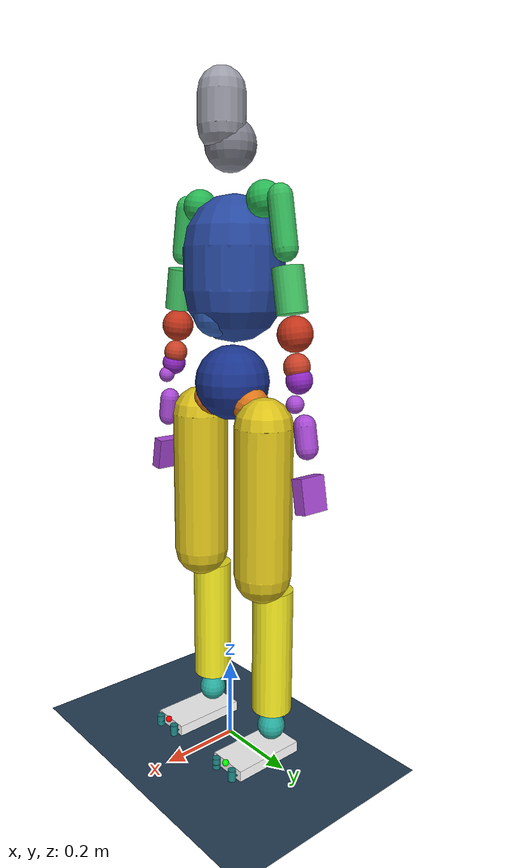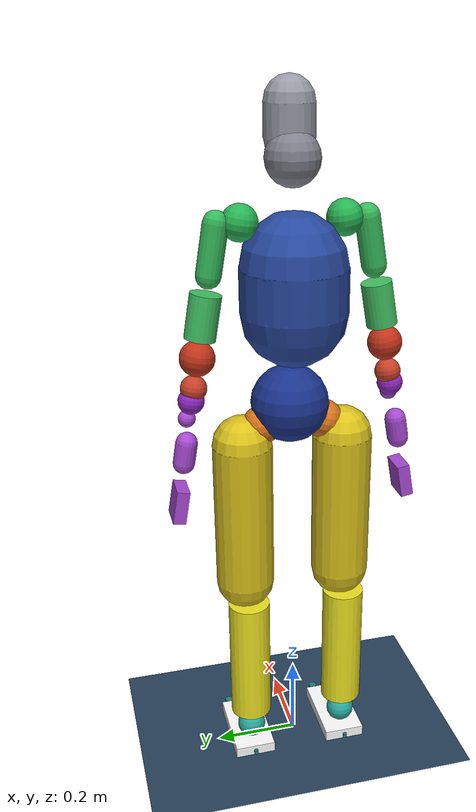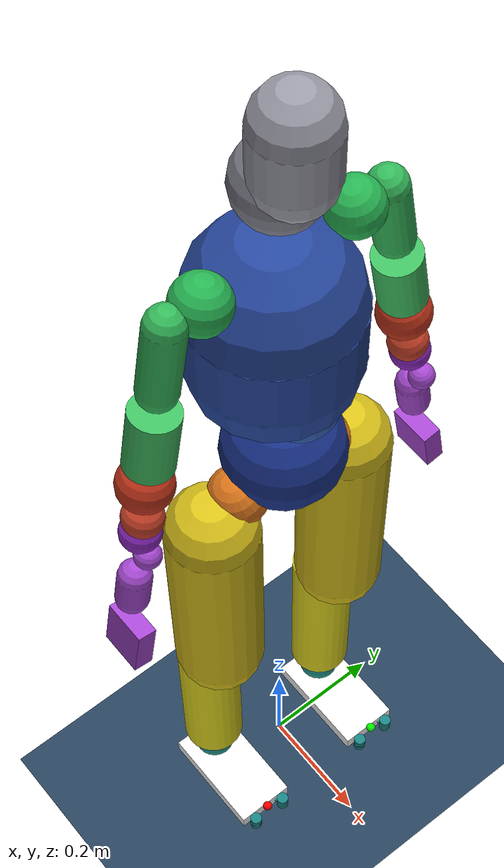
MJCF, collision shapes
<?xml version="1.0" encoding="UTF-8"?>
<mujoco model="walker_astron_v1">
  <compiler angle="radian" meshdir="/home/soom/work/GMR/xgmr_tienkung/assets/walker_c1/meshes" boundmass="0.0001"/>
  <option integrator="implicitfast" cone="elliptic" impratio="100" timestep="0.001" iterations="100" solver="CG" gravity="0 0 -9.81">
    <flag contact="enable" energy="enable" />
  </option>
  <statistic meansize="0.140456" extent="1.93199" center="-0.0165219 -8.18765e-05 -0.0755538"/>
  <default>
    <joint damping="1.0" frictionloss="0.2" armature="0.01"/>
  </default>
  <asset>
    <mesh name="base_link" file="base_link.STL"/>
    <mesh name="L_hip_pitch_link" file="L_hip_pitch_link.STL"/>
    <mesh name="L_hip_roll_link" file="L_hip_roll_link.STL"/>
    <mesh name="L_hip_yaw_link" file="L_hip_yaw_link.STL"/>
    <mesh name="L_knee_pitch_link" file="L_knee_pitch_link.STL"/>
    <mesh name="L_ankle_pitch_link" file="L_ankle_pitch_link.STL"/>
    <mesh name="L_ankle_roll_link" file="L_ankle_roll_link.STL"/>
    <mesh name="R_hip_pitch_link" file="R_hip_pitch_link.STL"/>
    <mesh name="R_hip_roll_link" file="R_hip_roll_link.STL"/>
    <mesh name="R_hip_yaw_link" file="R_hip_yaw_link.STL"/>
    <mesh name="R_knee_pitch_link" file="R_knee_pitch_link.STL"/>
    <mesh name="R_ankle_pitch_link" file="R_ankle_pitch_link.STL"/>
    <mesh name="R_ankle_roll_link" file="R_ankle_roll_link.STL"/>
    <mesh name="waist_yaw_link" file="waist_yaw_link.STL"/>
    <mesh name="waist_pitch_link" file="waist_pitch_link.STL"/>
    <mesh name="waist_roll_link" file="waist_roll_link.STL"/>
    <mesh name="L_shoulder_pitch_link" file="L_shoulder_pitch_link.STL"/>
    <mesh name="L_shoulder_roll_link" file="L_shoulder_roll_link.STL"/>
    <mesh name="L_shoulder_yaw_link" file="L_shoulder_yaw_link.STL"/>
    <mesh name="L_elbow_pitch_link" file="L_elbow_pitch_link.STL"/>
    <mesh name="L_elbow_yaw_link" file="L_elbow_yaw_link.STL"/>
    <mesh name="L_wrist_pitch_link" file="L_wrist_pitch_link.STL"/>
    <mesh name="L_wrist_roll_link" file="L_wrist_roll_link.STL"/>
    <mesh name="R_shoulder_pitch_link" file="R_shoulder_pitch_link.STL"/>
    <mesh name="R_shoulder_roll_link" file="R_shoulder_roll_link.STL"/>
    <mesh name="R_shoulder_yaw_link" file="R_shoulder_yaw_link.STL"/>
    <mesh name="R_elbow_pitch_link" file="R_elbow_pitch_link.STL"/>
    <mesh name="R_elbow_yaw_link" file="R_elbow_yaw_link.STL"/>
    <mesh name="R_wrist_pitch_link" file="R_wrist_pitch_link.STL"/>
    <mesh name="R_wrist_roll_link" file="R_wrist_roll_link.STL"/>
    <mesh name="head_yaw_link" file="head_yaw_link.STL"/>
    <mesh name="head_pitch_link" file="head_pitch_link.STL"/>

    <mesh name="L_hand_base_link" file="hand3_v1_new/L_hand_base_link.STL"/>
    <mesh name="L_palm_link" file="hand3_v1_new/L_palm_link.STL"/>
    <mesh name="L_thumb_cmp_link" file="hand3_v1_new/L_thumb_cmp_link.STL"/>
    <mesh name="L_thumb_mpp_link" file="hand3_v1_new/L_thumb_mpp_link.STL"/>
    <mesh name="L_thumb_ip_link" file="hand3_v1_new/L_thumb_ip_link.STL"/>
    <mesh name="L_index_mpp_link" file="hand3_v1_new/L_index_mpp_link.STL"/>
    <mesh name="L_index_ip_link" file="hand3_v1_new/L_index_ip_link.STL"/>
    <mesh name="L_middle_mpp_link" file="hand3_v1_new/L_middle_mpp_link.STL"/>
    <mesh name="L_middle_ip_link" file="hand3_v1_new/L_middle_ip_link.STL"/>
    <mesh name="L_ring_mpp_link" file="hand3_v1_new/L_ring_mpp_link.STL"/>
    <mesh name="L_ring_ip_link" file="hand3_v1_new/L_ring_ip_link.STL"/>
    <mesh name="L_little_mpp_link" file="hand3_v1_new/L_little_mpp_link.STL"/>
    <mesh name="L_little_ip_link" file="hand3_v1_new/L_little_ip_link.STL"/>
    <mesh name="R_hand_base_link" file="hand3_v1_new/R_hand_base_link.STL"/>
    <mesh name="R_palm_link" file="hand3_v1_new/R_palm_link.STL"/>
    <mesh name="R_thumb_cmp_link" file="hand3_v1_new/R_thumb_cmp_link.STL"/>
    <mesh name="R_thumb_mpp_link" file="hand3_v1_new/R_thumb_mpp_link.STL"/>
    <mesh name="R_thumb_ip_link" file="hand3_v1_new/R_thumb_ip_link.STL"/>
    <mesh name="R_index_mpp_link" file="hand3_v1_new/R_index_mpp_link.STL"/>
    <mesh name="R_index_ip_link" file="hand3_v1_new/R_index_ip_link.STL"/>
    <mesh name="R_middle_mpp_link" file="hand3_v1_new/R_middle_mpp_link.STL"/>
    <mesh name="R_middle_ip_link" file="hand3_v1_new/R_middle_ip_link.STL"/>
    <mesh name="R_ring_mpp_link" file="hand3_v1_new/R_ring_mpp_link.STL"/>
    <mesh name="R_ring_ip_link" file="hand3_v1_new/R_ring_ip_link.STL"/>
    <mesh name="R_little_mpp_link" file="hand3_v1_new/R_little_mpp_link.STL"/>
    <mesh name="R_little_ip_link" file="hand3_v1_new/R_little_ip_link.STL"/>
    <texture type="skybox" builtin="flat" rgb1="0 0 0" rgb2="0 0 0" width="512" height="3072"/>
    <texture type="2d" name="groundplane" builtin="checker" mark="edge" rgb1="0.2 0.3 0.4" rgb2="0.1 0.2 0.3" markrgb="0.8 0.8 0.8" width="300" height="300"/>
    <material name="groundplane" texture="groundplane" texuniform="true" texrepeat="5 5" reflectance="0.2"/>
  </asset>
  <worldbody>
    <light pos="1 0 3.5" dir="0 0 -1" directional="true"/>
    <geom name="floor" size="0 0 0.05" type="plane" material="groundplane"/>
    <body name="base_link" pos="0 0 0.91">
      <inertial pos="-0.00060742 0 -0.00390464" quat="1 0 0 0" mass="5.32923152" diaginertia="0.02561815 0.01751097 0.02397466"/>
      <joint name="floating_base" type="free"/>
      <geom type="mesh" contype="0" conaffinity="0" group="1" density="0" rgba="0.22 0.40 0.65 1" mesh="base_link"/>
      <geom name="base_link_collision" type="sphere" size="0.06" pos="0 0 -0.004" rgba="0.22 0.40 0.65 0.3"/>
      <body name="body_imu_link" quat="0.707107 0 0 -0.707107">
        <inertial pos="0 0 0" mass="0.0001" diaginertia="1e-09 1e-09 1e-09"/>
        <geom size="0.005 0.005 0.005" type="box" contype="0" conaffinity="0" group="1" density="0" rgba="0 0 1 1"/>
        <site name="imu" size="0.01" pos="0 0 0"/>
      </body>
      <body name="L_hip_pitch_link" pos="0 0.073499 -0.019694" quat="0.991445 -0.130526 0 0">
        <inertial pos="0.0048541 0.0500696 -0.0150271" quat="0.245039 0.652073 0.417654 0.583372" mass="1.65569" diaginertia="0.00293392 0.00256263 0.00240876"/>
        <joint name="L_hip_pitch_joint" pos="0 0 0" axis="0 1 0" limited="true" range="-2.98 2.53"/>
        <geom type="mesh" contype="0" conaffinity="0" group="1" density="0" rgba="0.85 0.45 0.10 1" mesh="L_hip_pitch_link"/>
        <geom name="L_hip_pitch_collision" type="sphere" size="0.045" rgba="0.85 0.45 0.10 0.3"/>
        <body name="L_hip_roll_link" pos="0 0.0535795 -0.02" quat="0.991445 0.130526 0 0">
          <inertial pos="0.00120874 0.00203626 -0.0330367" quat="0.513666 0.487315 0.496385 0.502267" mass="0.514808" diaginertia="0.00158831 0.0015264 0.000682669"/>
          <joint name="L_hip_roll_joint" pos="0 0 0" axis="1 0 0" limited="true" range="-0.314 2.059"/>
          <geom type="mesh" contype="0" conaffinity="0" group="1" density="0" rgba="0.90 0.62 0.15 1" mesh="L_hip_roll_link"/>
          <geom name="L_hip_roll_collision" type="sphere" size="0.065" pos="0 0 -0.033" rgba="0.90 0.62 0.15 0.3"/>
          <body name="L_hip_yaw_link" pos="0 0 -0.0621" quat="1 0 0 0">
            <inertial pos="-0.00120768 -0.00740878 -0.123895" quat="0.723017 0.011601 0.0200665 0.690441" mass="5.13193" diaginertia="0.0446202 0.0424782 0.0109089"/>
            <joint name="L_hip_yaw_joint" pos="0 0 0" axis="0 0 1" limited="true" range="-2.146 3.246"/>
            <geom type="mesh" contype="0" conaffinity="0" group="1" density="0" rgba="0.85 0.75 0.10 1" mesh="L_hip_yaw_link"/>
            <geom name="L_hip_yaw_collision" type="capsule" size="0.07 0.18" pos="0 0 -0.13" rgba="0.85 0.75 0.10 0.3"/>
            <body name="L_knee_pitch_link" pos="-0.035 0 -0.3179" quat="1 0 0 0">
              <inertial pos="0.00270804 3.653e-05 -0.160407" quat="0.705286 0.0123666 0.015597 0.708643" mass="3.32222" diaginertia="0.0369622 0.0367307 0.00346204"/>
              <joint name="L_knee_pitch_joint" pos="0 0 0" axis="0 1 0" limited="true" range="0.08 2.478"/>
              <geom type="mesh" contype="0" conaffinity="0" group="1" density="0" rgba="0.92 0.88 0.12 1" mesh="L_knee_pitch_link"/>
              <geom name="L_knee_pitch_collision" type="cylinder" size="0.05 0.16" pos="0 0 -0.2" rgba="0.92 0.88 0.12 0.3"/>
              <body name="L_ankle_pitch_link" pos="0 0 -0.41" quat="1 0 0 0">
                <inertial pos="-0.00012374 -0.00221434 -0.0057231" quat="0.0409104 0.70465 0.0378602 0.707362" mass="0.110584" diaginertia="4.6937e-05 3.42735e-05 2.57096e-05"/>
                <joint name="L_ankle_pitch_joint" pos="0 0 0" axis="0 1 0" limited="true" range="-1.012 0.488"/>
                <geom type="mesh" contype="0" conaffinity="0" group="1" density="0" rgba="0.15 0.65 0.60 1" mesh="L_ankle_pitch_link"/>
                <geom name="L_ankle_pitch_collision" type="sphere" size="0.035" rgba="0.15 0.65 0.60 0.3"/>
                <body name="L_ankle_roll_link" pos="0 0 -0.012" quat="1 0 0 0">
                  <inertial pos="0.0340612 2.01988e-06 -0.0209947" quat="-4.35034e-05 0.733434 -6.9335e-06 0.679761" mass="0.826921" diaginertia="0.00492003 0.00442443 0.00096887"/>
                  <joint name="L_ankle_roll_joint" pos="0 0 0" axis="1 0 0" limited="true" range="-0.401 0.401"/>
                  <geom type="mesh" contype="0" conaffinity="0" group="1" density="0" rgba="0.10 0.50 0.50 1" mesh="L_ankle_roll_link"/>
                  <geom name="L_ankle_roll_collision" type="box" size="0.095 0.05 0.015" pos="0.05 0 -0.045" rgba="1 1 1 0.3"/>
                  <geom name="L_foot_end_outer"      pos="-0.049  0.0  -0.045" size="0.005 0.005" type="cylinder" rgba="0.10 0.50 0.50 1" contype="0" conaffinity="0"/>
                  <geom name="L_foot_front_outer"    size="0.01 0.001" pos="0.155 -0.03 -0.045" type="cylinder" rgba="0.10 0.50 0.50 1" contype="0" conaffinity="0"/>
                  <geom name="L_foot_front_inner"    size="0.01 0.001" pos="0.145  0.03 -0.045" type="cylinder" rgba="0.10 0.50 0.50 1" contype="0" conaffinity="0"/>
                  <geom name="L_foot_mid_outer"      size="0.01 0.001" pos="0.045 -0.02 -0.045" type="cylinder" rgba="0.10 0.50 0.50 1" contype="0" conaffinity="0"/>
                  <geom name="L_foot_mid_inner"      size="0.01 0.001" pos="0.045  0.02 -0.045" type="cylinder" rgba="0.10 0.50 0.50 1" contype="0" conaffinity="0"/>
                  <geom name="L_foot_strip_outer"    size="0.01 0.001" pos="0.095 -0.01 -0.045" type="cylinder" rgba="0.10 0.50 0.50 1" contype="0" conaffinity="0"/>
                  <geom name="toe1_left_collision"   size="0.01 0.015" pos="0.155  0.03 -0.045" type="cylinder" rgba="0.10 0.50 0.50 1"/>
                  <geom name="toe2_left_collision"   size="0.01 0.015" pos="0.155 -0.03 -0.045" type="cylinder" rgba="0.10 0.50 0.50 1"/>
                  <geom name="foot_left_sole" type="sphere" size="0.005" pos="0 0 -0.05" rgba="0 0 0 0"/>
                  <site name="left_foot_end" pos="0.15 0 -0.03" size="0.008" rgba="0 1 0 1"/>
                  <site name="left_foot_force" pos="0 0 -0.05"/>
                  <site name="left_foot_torque" pos="0 0 -0.05"/>
                </body>
              </body>
            </body>
          </body>
        </body>
      </body>
      <body name="R_hip_pitch_link" pos="0 -0.0734226 -0.0196735" quat="0.991445 0.130526 0 0">
        <inertial pos="0.0062436 -0.0504262 -0.014716" quat="0.519984 0.459924 0.700462 0.165648" mass="1.65592" diaginertia="0.00288142 0.00250814 0.00239465"/>
        <joint name="R_hip_pitch_joint" pos="0 0 0" axis="0 1 0" limited="true" range="-2.98 2.53"/>
        <geom type="mesh" contype="0" conaffinity="0" group="1" density="0" rgba="0.85 0.45 0.10 1" mesh="R_hip_pitch_link"/>
        <geom name="R_hip_pitch_collision" type="sphere" size="0.045" rgba="0.85 0.45 0.10 0.3"/>
        <body name="R_hip_roll_link" pos="0 -0.053579 -0.02" quat="0.991445 -0.130526 0 0">
          <inertial pos="0.00120761 -0.00204745 -0.033039" quat="0.502185 0.496301 0.487383 0.513764" mass="0.514808" diaginertia="0.00158819 0.00152639 0.000682655"/>
          <joint name="R_hip_roll_joint" pos="0 0 0" axis="1 0 0" limited="true" range="-2.059 0.314"/>
          <geom type="mesh" contype="0" conaffinity="0" group="1" density="0" rgba="0.90 0.62 0.15 1" mesh="R_hip_roll_link"/>
          <geom name="R_hip_roll_collision" type="sphere" size="0.065" pos="0 0 -0.033" rgba="0.90 0.62 0.15 0.3"/>
          <body name="R_hip_yaw_link" pos="0 0 -0.0621" quat="1 0 0 0">
            <inertial pos="-0.00120109 0.00740989 -0.123888" quat="0.688781 0.0189619 0.0104703 0.724645" mass="5.13155" diaginertia="0.0446208 0.04247 0.0109153"/>
            <joint name="R_hip_yaw_joint" pos="0 0 0" axis="0 0 1" limited="true" range="-3.246 2.146"/>
            <geom type="mesh" contype="0" conaffinity="0" group="1" density="0" rgba="0.85 0.75 0.10 1" mesh="R_hip_yaw_link"/>
            <geom name="R_hip_yaw_collision" type="capsule" size="0.07 0.18" pos="0 0 -0.13" rgba="0.85 0.75 0.10 0.3"/>
            <body name="R_knee_pitch_link" pos="-0.035 0 -0.3179" quat="1 0 0 0">
              <inertial pos="0.00271353 -0.00017413 -0.160478" quat="0.734924 0.0149851 0.0127119 0.677864" mass="3.32312" diaginertia="0.0369759 0.0367282 0.00345006"/>
              <joint name="R_knee_pitch_joint" pos="0 0 0" axis="0 1 0" limited="true" range="0.08 2.478"/>
              <geom type="mesh" contype="0" conaffinity="0" group="1" density="0" rgba="0.92 0.88 0.12 1" mesh="R_knee_pitch_link"/>
              <geom name="R_knee_pitch_collision" type="cylinder" size="0.05 0.16" pos="0 0 -0.2" rgba="0.92 0.88 0.12 0.3"/>
              <body name="R_ankle_pitch_link" pos="0 0 -0.41" quat="1 0 0 0">
                <inertial pos="0.00012374 0.00221434 -0.0057231" quat="-0.0378602 0.707362 -0.0409104 0.70465" mass="0.110584" diaginertia="4.6937e-05 3.42735e-05 2.57096e-05"/>
                <joint name="R_ankle_pitch_joint" pos="0 0 0" axis="0 1 0" limited="true" range="-1.012 0.488"/>
                <geom type="mesh" contype="0" conaffinity="0" group="1" density="0" rgba="0.15 0.65 0.60 1" mesh="R_ankle_pitch_link"/>
                <geom name="R_ankle_pitch_collision" type="sphere" size="0.035" rgba="0.15 0.65 0.60 0.3"/>
                <body name="R_ankle_roll_link" pos="0 0 -0.012" quat="1 0 0 0">
                  <inertial pos="0.0340612 2.01988e-06 -0.0209947" quat="-4.35034e-05 0.733434 -6.9335e-06 0.679761" mass="0.826921" diaginertia="0.00492003 0.00442443 0.00096887"/>
                  <joint name="R_ankle_roll_joint" pos="0 0 0" axis="1 0 0" limited="true" range="-0.401 0.401"/>
                  <geom type="mesh" contype="0" conaffinity="0" group="1" density="0" rgba="0.10 0.50 0.50 1" mesh="R_ankle_roll_link"/>
                  <geom name="R_ankle_roll_collision" type="box" size="0.095 0.05 0.015" pos="0.05 0 -0.045" rgba="1 1 1 0.3"/>
                  <geom name="R_foot_end_outer"      pos="-0.049  0.0  -0.045" size="0.005 0.005" type="cylinder" rgba="0.10 0.50 0.50 1" contype="0" conaffinity="0"/>
                  <geom name="R_foot_front_outer"    size="0.01 0.001" pos="0.155 -0.03 -0.045" type="cylinder" rgba="0.10 0.50 0.50 1" contype="0" conaffinity="0"/>
                  <geom name="R_foot_front_inner"    size="0.01 0.001" pos="0.145  0.03 -0.045" type="cylinder" rgba="0.10 0.50 0.50 1" contype="0" conaffinity="0"/>
                  <geom name="R_foot_mid_outer"      size="0.01 0.001" pos="0.045 -0.02 -0.045" type="cylinder" rgba="0.10 0.50 0.50 1" contype="0" conaffinity="0"/>
                  <geom name="R_foot_mid_inner"      size="0.01 0.001" pos="0.045  0.02 -0.045" type="cylinder" rgba="0.10 0.50 0.50 1" contype="0" conaffinity="0"/>
                  <geom name="R_foot_strip_outer"    size="0.01 0.001" pos="0.095 -0.01 -0.045" type="cylinder" rgba="0.10 0.50 0.50 1" contype="0" conaffinity="0"/>
                  <geom name="toe1_right_collision"  size="0.01 0.015" pos="0.155  0.03 -0.045" type="cylinder" rgba="0.10 0.50 0.50 1"/>
                  <geom name="toe2_right_collision"  size="0.01 0.015" pos="0.155 -0.03 -0.045" type="cylinder" rgba="0.10 0.50 0.50 1"/>
                  <geom name="foot_right_sole" type="sphere" size="0.005" pos="0 0 -0.05" rgba="0 0 0 0"/>
                  <site name="right_foot_end" pos="0.15 0 -0.03" size="0.008" rgba="1 0 0 1"/>
                  <site name="right_foot_force" pos="0 0 -0.05"/>
                  <site name="right_foot_torque" pos="0 0 -0.05"/>
                </body>
              </body>
            </body>
          </body>
        </body>
      </body>
      <body name="waist_yaw_link" pos="0 0 0.0766406" quat="1 0 0 0">
        <inertial pos="0.00270178 -0.00088235 0.0369526" quat="0.400373 0.42401 -0.529445 0.616121" mass="2.0613" diaginertia="0.0057903 0.00442111 0.00398297"/>
        <joint name="waist_yaw_joint" pos="0 0 0" axis="0 0 1" limited="true" range="-2.792 2.792"/>
        <geom type="mesh" contype="0" conaffinity="0" group="1" density="0" rgba="0.10 0.20 0.55 1" mesh="waist_yaw_link"/>
        <geom name="waist_yaw_collision" type="sphere" size="0.09" pos="0 0.007 -0.049" rgba="0.10 0.20 0.55 0.3"/>
        <body name="waist_pitch_link" pos="0.04 0 0.1155" quat="1 0 0 0">
          <inertial pos="-0.00141152 -0.00378014 -1.015e-05" quat="0.489842 0.49442 -0.504432 0.51103" mass="1.56616" diaginertia="0.00200827 0.00193456 0.0014908"/>
          <joint name="waist_pitch_joint" pos="0 0 0" axis="0 1 0" limited="true" range="-0.017 1.221"/>
          <geom type="mesh" contype="0" conaffinity="0" group="1" density="0" rgba="0.20 0.38 0.72 1" mesh="waist_pitch_link"/>
          <geom name="waist_pitch_collision" type="sphere" size="0.055" pos="0.002 0 -0.001" rgba="0.20 0.38 0.72 0.3"/>
          <body name="waist_roll_link" pos="-0.0515 0 0" quat="1 0 0 0">
            <inertial pos="-0.00232419 0.000109073 0.150683" quat="0.997895 0.00083228 0.0647555 -0.00354434" mass="13.3404" diaginertia="0.14941 0.126998 0.0780225"/>
            <joint name="waist_roll_joint" pos="0 0 0" axis="1 0 0" limited="true" range="-0.75 0.75"/>
            <geom type="mesh" contype="0" conaffinity="0" group="1" density="0" rgba="0.15 0.28 0.62 1" mesh="waist_roll_link"/>
            <geom name="waist_roll_collision" type="capsule" size="0.12 0.05" pos="0 0 0.1" rgba="0.15 0.28 0.62 0.3"/>
            <body name="L_shoulder_pitch_link" pos="0.0115 0.114262 0.247779" quat="0.996195 0.0871557 0 0">
              <inertial pos="0.00379496 0.0469029 -4.625e-05" quat="0.530969 0.396641 -0.559055 0.498202" mass="0.798422" diaginertia="0.000564005 0.000537541 0.000482404"/>
              <joint name="L_shoulder_pitch_joint" pos="0 0 0" axis="0 1 0" limited="true" range="-3.089 2.565"/>
              <geom type="mesh" contype="0" conaffinity="0" group="1" density="0" rgba="0.15 0.70 0.32 1" mesh="L_shoulder_pitch_link"/>
              <geom name="L_shoulder_pitch_collision" type="sphere" size="0.04" rgba="0.15 0.70 0.32 0.3"/>
              <body name="L_shoulder_roll_link" pos="0 0.0499 0" quat="1 0 0 0">
                <inertial pos="0.00388223 0.00090177 -0.0814423" quat="0.872628 0.0372716 0.135609 0.467698" mass="0.954452" diaginertia="0.00175475 0.00170192 0.000762658"/>
                <joint name="L_shoulder_roll_joint" pos="0 0 0" axis="1 0 0" limited="true" range="-0.139 1.884"/>
                <geom type="mesh" contype="0" conaffinity="0" group="1" density="0" rgba="0.20 0.72 0.35 1" mesh="L_shoulder_roll_link"/>
                <geom name="L_shoulder_roll_collision" type="capsule" size="0.028 0.055" pos="0 0 -0.063" quat="1 0 0 0" rgba="0.20 0.72 0.35 0.3"/>
                <body name="L_shoulder_yaw_link" pos="0 0 -0.12675" quat="1 0 0 0">
                  <inertial pos="-0.00111624 -0.00509191 -0.0777859" quat="0.726587 -0.0403648 0.0185064 0.685638" mass="0.951576" diaginertia="0.0013695 0.00135249 0.000633425"/>
                  <joint name="L_shoulder_yaw_joint" pos="0 0 0" axis="0 0 1" limited="true" range="-2.844 2.844"/>
                  <geom type="mesh" contype="0" conaffinity="0" group="1" density="0" rgba="0.25 0.75 0.38 1" mesh="L_shoulder_yaw_link"/>
                  <geom name="L_shoulder_yaw_collision" type="cylinder" size="0.035 0.05" pos="0 0 -0.08" rgba="0.25 0.75 0.38 0.3"/>
                  <body name="L_elbow_pitch_link" pos="0 0 -0.09325" quat="1 0 0 0">
                    <inertial pos="-0.00109585 -0.00301164 -0.0816298" quat="0.965846 0.115424 -0.0658207 0.222454" mass="0.910303" diaginertia="0.00151258 0.00147365 0.000681226"/>
                    <joint name="L_elbow_pitch_joint" pos="0 0 0" axis="0 1 0" limited="true" range="-2.2689 0.104"/>
                    <geom type="mesh" contype="0" conaffinity="0" group="1" density="0" rgba="0.75 0.20 0.10 1" mesh="L_elbow_pitch_link"/>
                    <geom name="L_elbow_pitch_collision" type="sphere" size="0.04" pos="-0.002 0 -0.08" rgba="0.75 0.20 0.10 0.3"/>
                    <body name="L_elbow_yaw_link" pos="0 0 -0.12425" quat="1 0 0 0">
                      <inertial pos="0.00041996 0.00835103 -0.0205441" quat="0.658348 0.351515 -0.319902 0.583676" mass="0.0923308" diaginertia="8.7254e-05 8.15789e-05 5.94071e-05"/>
                      <joint name="L_elbow_yaw_joint" pos="0 0 0" axis="0 0 1" limited="true" range="-2.844 2.844"/>
                      <geom type="mesh" contype="0" conaffinity="0" group="1" density="0" rgba="0.78 0.25 0.15 1" mesh="L_elbow_yaw_link"/>
                      <geom name="L_elbow_yaw_collision" type="sphere" size="0.03" pos="0.001 -0.002 -0.026" rgba="0.78 0.25 0.15 0.3"/>
                      <body name="L_wrist_pitch_link" pos="0 0 -0.05575" quat="1 0 0 0">
                        <inertial pos="0.00244378 0.00252389 -0.0194028" quat="0.55381 -0.111462 0.0117937 0.825064" mass="0.498236" diaginertia="0.00033589 0.000333064 0.000165096"/>
                        <joint name="L_wrist_pitch_joint" pos="0 0 0" axis="0 1 0" limited="true" range="-0.68 0.68"/>
                        <geom type="mesh" contype="0" conaffinity="0" group="1" density="0" rgba="0.55 0.15 0.75 1" mesh="L_wrist_pitch_link"/>
                        <geom name="L_wrist_pitch_collision" type="sphere" size="0.03" rgba="0.55 0.15 0.75 0.3"/>
                        <body name="L_wrist_roll_link" pos="0 0 -0.0399515" quat="1 0 0 0">
                          <inertial pos="0.0085537 -1.437e-05 -0.021913" quat="0.586057 0.395648 0.395648 0.586057" mass="0.0476664" diaginertia="4.753e-05 4.13777e-05 1.91423e-05"/>
                          <joint name="L_wrist_roll_joint" pos="0 0 0" axis="1 0 0" limited="true" range="-1.57 1.57"/>
                          <geom type="mesh" contype="0" conaffinity="0" group="1" density="0" rgba="0.65 0.28 0.82 1" mesh="L_wrist_roll_link"/>
                          <geom name="L_wrist_roll_collision" type="sphere" size="0.02" pos="0.02 0 -0.01" rgba="0.65 0.28 0.82 0.3"/>
                          <geom name="hand_l_base_collision" type="capsule" size="0.025 0.025" pos="-0.004 -0.002 -0.084" rgba="0.65 0.28 0.82 0.5"/>
                          <geom name="hand_l_palm_collision" type="box" size="0.035 0.015 0.04" pos="0 -0.005 -0.21" rgba="0.65 0.28 0.82 0.5"/>

                          <!-- Left hand from S2 -->
                          <geom pos="-0.0044948 -0.0019462 -0.084379" quat="0.999994 -0.00244449 0.00257359 6.29115e-06" type="mesh" contype="0" conaffinity="0" group="1" density="0" rgba="0.65 0.28 0.82 1" mesh="L_hand_base_link"/>
                          <geom pos="9.82685e-05 -0.00183303 -0.0699028" quat="-0.00258616 -0.00388747 0.999988 -0.00163816" type="mesh" contype="0" conaffinity="0" group="1" density="0" rgba="0.65 0.28 0.82 1" mesh="L_hand_base_link"/>
                          <geom pos="-0.000669534 -0.0153602 -0.169634" quat="0.501464 0.49594 0.50241 -0.500162" type="mesh" contype="0" conaffinity="0" group="1" density="0" rgba="0.65 0.28 0.82 1" mesh="L_palm_link"/>
                          <geom pos="0.0284784 -0.00761078 -0.121231" quat="0.931513 -0.00247393 0.00180091 -0.363696" type="mesh" contype="0" conaffinity="0" group="1" density="0" rgba="0.65 0.28 0.82 1" mesh="L_thumb_cmp_link"/>
                          <geom pos="0.0365366 -0.0165513 -0.131288" quat="0.621471 -0.693899 0.271482 -0.242024" type="mesh" contype="0" conaffinity="0" group="1" density="0" rgba="0.65 0.28 0.82 1" mesh="L_thumb_mpp_link"/>
                          <geom pos="0.0916958 -0.0673692 -0.131393" quat="0.621471 -0.693899 0.271482 -0.242024" type="mesh" contype="0" conaffinity="0" group="1" density="0" rgba="0.65 0.28 0.82 1" mesh="L_thumb_ip_link"/>
                          <geom pos="0.0297915 -0.00356363 -0.211648" quat="0.0673628 0.709576 -0.0628232 -0.698582" type="mesh" contype="0" conaffinity="0" group="1" density="0" rgba="0.65 0.28 0.82 1" mesh="L_index_mpp_link"/>
                          <geom pos="0.0304151 -0.0106746 -0.249786" quat="0.0622932 0.710013 -0.0576739 -0.699053" type="mesh" contype="0" conaffinity="0" group="1" density="0" rgba="0.65 0.28 0.82 1" mesh="L_index_ip_link"/>
                          <geom pos="0.00937837 -0.00372277 -0.211747" quat="0.0680224 0.702523 -0.0622217 -0.705665" type="mesh" contype="0" conaffinity="0" group="1" density="0" rgba="0.65 0.28 0.82 1" mesh="L_middle_mpp_link"/>
                          <geom pos="0.00923598 -0.0108397 -0.249889" quat="0.0637639 0.702885 -0.0579823 -0.706063" type="mesh" contype="0" conaffinity="0" group="1" density="0" rgba="0.65 0.28 0.82 1" mesh="L_middle_ip_link"/>
                          <geom pos="-0.0110327 -0.00388055 -0.211436" quat="0.0686751 0.695399 -0.061614 -0.712677" type="mesh" contype="0" conaffinity="0" group="1" density="0" rgba="0.65 0.28 0.82 1" mesh="L_ring_mpp_link"/>
                          <geom pos="-0.011941 -0.0110034 -0.249566" quat="0.0635032 0.695827 -0.0565677 -0.713156" type="mesh" contype="0" conaffinity="0" group="1" density="0" rgba="0.65 0.28 0.82 1" mesh="L_ring_ip_link"/>
                          <geom pos="-0.0314336 -0.00403693 -0.210717" quat="0.069321 0.688204 -0.0610001 -0.719617" type="mesh" contype="0" conaffinity="0" group="1" density="0" rgba="0.65 0.28 0.82 1" mesh="L_little_mpp_link"/>
                          <geom pos="-0.0331074 -0.0111657 -0.248819" quat="0.0640988 0.688629 -0.056006 -0.720101" type="mesh" contype="0" conaffinity="0" group="1" density="0" rgba="0.65 0.28 0.82 1" mesh="L_little_ip_link"/>
                        </body>
                      </body>
                    </body>
                  </body>
                </body>
              </body>
            </body>
            <body name="R_shoulder_pitch_link" pos="0.0115 -0.11481 0.247779" quat="0.996195 -0.0871557 0 0">
              <inertial pos="0.00384148 -0.046973 7.92e-06" quat="0.443496 0.539557 -0.491243 0.520451" mass="0.79994" diaginertia="0.000563949 0.000536866 0.000485635"/>
              <joint name="R_shoulder_pitch_joint" pos="0 0 0" axis="0 1 0" limited="true" range="-3.089 2.565"/>
              <geom type="mesh" contype="0" conaffinity="0" group="1" density="0" rgba="0.15 0.70 0.32 1" mesh="R_shoulder_pitch_link"/>
              <geom name="R_shoulder_pitch_collision" type="sphere" size="0.04" rgba="0.15 0.70 0.32 0.3"/>
              <body name="R_shoulder_roll_link" pos="0 -0.0499 0" quat="1 0 0 0">
                <inertial pos="0.00374986 -0.00090026 -0.0814559" quat="0.475045 0.134535 0.0380022 0.868786" mass="0.954183" diaginertia="0.00175385 0.00170009 0.000764477"/>
                <joint name="R_shoulder_roll_joint" pos="0 0 0" axis="1 0 0" limited="true" range="-1.884 0.139"/>
                <geom type="mesh" contype="0" conaffinity="0" group="1" density="0" rgba="0.20 0.72 0.35 1" mesh="R_shoulder_roll_link"/>
                <geom name="R_shoulder_roll_collision" type="capsule" size="0.028 0.055" pos="0 0 -0.063" quat="1 0 0 0" rgba="0.20 0.72 0.35 0.3"/>
                <body name="R_shoulder_yaw_link" pos="0 0 -0.12675" quat="1 0 0 0">
                  <inertial pos="-0.00111484 -0.00508263 -0.0776773" quat="0.726766 -0.0401509 0.0186017 0.685458" mass="0.952713" diaginertia="0.00137689 0.00135996 0.000633578"/>
                  <joint name="R_shoulder_yaw_joint" pos="0 0 0" axis="0 0 1" limited="true" range="-2.844 2.844"/>
                  <geom type="mesh" contype="0" conaffinity="0" group="1" density="0" rgba="0.25 0.75 0.38 1" mesh="R_shoulder_yaw_link"/>
                  <geom name="R_shoulder_yaw_collision" type="cylinder" size="0.035 0.05" pos="0 0 -0.08" rgba="0.25 0.75 0.38 0.3"/>
                  <body name="R_elbow_pitch_link" pos="0 0 -0.09325" quat="1 0 0 0">
                    <inertial pos="-0.00109585 -0.00301164 -0.0816298" quat="0.965858 0.115427 -0.0658144 0.222405" mass="0.910303" diaginertia="0.00151259 0.00147365 0.000681226"/>
                    <joint name="R_elbow_pitch_joint" pos="0 0 0" axis="0 1 0" limited="true" range="-2.2689 0.104"/>
                    <geom type="mesh" contype="0" conaffinity="0" group="1" density="0" rgba="0.75 0.20 0.10 1" mesh="R_elbow_pitch_link"/>
                    <geom name="R_elbow_pitch_collision" type="sphere" size="0.04" pos="-0.002 0 -0.08" rgba="0.75 0.20 0.10 0.3"/>
                    <body name="R_elbow_yaw_link" pos="0 0 -0.12425" quat="1 0 0 0">
                      <inertial pos="0.00042308 0.00819376 -0.0202823" quat="0.654539 0.356415 -0.325593 0.581839" mass="0.0916493" diaginertia="8.62948e-05 8.04003e-05 5.91449e-05"/>
                      <joint name="R_elbow_yaw_joint" pos="0 0 0" axis="0 0 1" limited="true" range="-2.844 2.844"/>
                      <geom type="mesh" contype="0" conaffinity="0" group="1" density="0" rgba="0.78 0.25 0.15 1" mesh="R_elbow_yaw_link"/>
                      <geom name="R_elbow_yaw_collision" type="sphere" size="0.03" pos="-0.001 0.002 -0.026" rgba="0.78 0.25 0.15 0.3"/>
                      <body name="R_wrist_pitch_link" pos="0 0 -0.05575" quat="1 0 0 0">
                        <inertial pos="0.00244378 0.00252389 -0.0194028" quat="0.55381 -0.111462 0.0117937 0.825064" mass="0.498236" diaginertia="0.00033589 0.000333064 0.000165096"/>
                        <joint name="R_wrist_pitch_joint" pos="0 0 0" axis="0 1 0" limited="true" range="-0.68 0.68"/>
                        <geom type="mesh" contype="0" conaffinity="0" group="1" density="0" rgba="0.55 0.15 0.75 1" mesh="R_wrist_pitch_link"/>
                        <geom name="R_wrist_pitch_collision" type="sphere" size="0.03" rgba="0.55 0.15 0.75 0.3"/>
                        <body name="R_wrist_roll_link" pos="0 0 -0.0399515" quat="1 0 0 0">
                          <inertial pos="0.0085537 -1.437e-05 -0.021913" quat="0.586057 0.395648 0.395648 0.586057" mass="0.0476664" diaginertia="4.753e-05 4.13777e-05 1.91423e-05"/>
                          <joint name="R_wrist_roll_joint" pos="0 0 0" axis="1 0 0" limited="true" range="-1.57 1.57"/>
                          <geom type="mesh" contype="0" conaffinity="0" group="1" density="0" rgba="0.65 0.28 0.82 1" mesh="R_wrist_roll_link"/>
                          <geom name="R_wrist_roll_collision" type="sphere" size="0.02" pos="0.02 0 0.01" rgba="0.65 0.28 0.82 0.3"/>
                          <geom name="hand_r_base_collision" type="capsule" size="0.025 0.025" pos="0.002 -0.002 -0.082" rgba="0.65 0.28 0.82 0.5"/>
                          <geom name="hand_r_palm_collision" type="box" size="0.035 0.015 0.04" pos="0 0.005 -0.21" rgba="0.65 0.28 0.82 0.5"/>

                          <!-- Right hand from S2 -->
                          <geom pos="0.0022054 -0.0019134 -0.081806" quat="0.999997 -0.00243675 0 0" type="mesh" contype="0" conaffinity="0" group="1" density="0" rgba="0.65 0.28 0.82 1" mesh="R_hand_base_link"/>
                          <geom pos="6.97036e-05 -0.00280912 -0.0674472" quat="0.00079634 0.999998 1.38929e-06 -0.00174477" type="mesh" contype="0" conaffinity="0" group="1" density="0" rgba="0.65 0.28 0.82 1" mesh="R_hand_base_link"/>
                          <geom pos="7.84698e-05 0.0102279 -0.167247" quat="-0.498728 0.499524 -0.501271 -0.500474" type="mesh" contype="0" conaffinity="0" group="1" density="0" rgba="0.65 0.28 0.82 1" mesh="R_palm_link"/>
                          <geom pos="0.029204 0.00294042 -0.118758" quat="-0.930095 9.80899e-05 -0.00191599 -0.367313" type="mesh" contype="0" conaffinity="0" group="1" density="0" rgba="0.65 0.28 0.82 1" mesh="R_thumb_cmp_link"/>
                          <geom pos="0.0372094 0.0118945 -0.128846" quat="-0.691144 0.622417 0.244408 -0.274193" type="mesh" contype="0" conaffinity="0" group="1" density="0" rgba="0.65 0.28 0.82 1" mesh="R_thumb_mpp_link"/>
                          <geom pos="0.0919719 0.0631391 -0.129107" quat="-0.689475 0.623882 0.240644 -0.278363" type="mesh" contype="0" conaffinity="0" group="1" density="0" rgba="0.65 0.28 0.82 1" mesh="R_thumb_ip_link"/>
                          <geom pos="0.0307022 -0.00153475 -0.209153" quat="-0.71007 -0.062872 -0.698397 -0.0639405" type="mesh" contype="0" conaffinity="0" group="1" density="0" rgba="0.65 0.28 0.82 1" mesh="R_index_mpp_link"/>
                          <geom pos="0.0313349 0.00539585 -0.247324" quat="-0.710515 -0.0578039 -0.698835 -0.0587877" type="mesh" contype="0" conaffinity="0" group="1" density="0" rgba="0.65 0.28 0.82 1" mesh="R_index_ip_link"/>
                          <geom pos="0.0110386 -0.00153501 -0.209289" quat="-0.696165 -0.0629199 -0.712259 -0.0638885" type="mesh" contype="0" conaffinity="0" group="1" density="0" rgba="0.65 0.28 0.82 1" mesh="R_middle_mpp_link"/>
                          <geom pos="0.0101542 0.00539532 -0.247461" quat="-0.703394 -0.059278 -0.705859 -0.0590342" type="mesh" contype="0" conaffinity="0" group="1" density="0" rgba="0.65 0.28 0.82 1" mesh="R_middle_ip_link"/>
                          <geom pos="-0.0101245 -0.0015346 -0.209011" quat="-0.695913 -0.0641649 -0.712506 -0.0626431" type="mesh" contype="0" conaffinity="0" group="1" density="0" rgba="0.65 0.28 0.82 1" mesh="R_ring_mpp_link"/>
                          <geom pos="-0.0110238 0.005396 -0.247176" quat="-0.696349 -0.0589944 -0.712952 -0.057593" type="mesh" contype="0" conaffinity="0" group="1" density="0" rgba="0.65 0.28 0.82 1" mesh="R_ring_ip_link"/>
                          <geom pos="-0.0305273 -0.00153355 -0.208324" quat="-0.688728 -0.0648017 -0.719453 -0.0619848" type="mesh" contype="0" conaffinity="0" group="1" density="0" rgba="0.65 0.28 0.82 1" mesh="R_little_mpp_link"/>
                          <geom pos="-0.0321921 0.0053971 -0.246464" quat="-0.68916 -0.0595808 -0.719904 -0.0569869" type="mesh" contype="0" conaffinity="0" group="1" density="0" rgba="0.65 0.28 0.82 1" mesh="R_little_ip_link"/>
                        </body>
                      </body>
                    </body>
                  </body>
                </body>
              </body>
            </body>
            <body name="head_yaw_link" pos="0.0115 0 0.34305" quat="1 0 0 0">
              <inertial pos="-0.00204647 0.00017996 -0.0311295" quat="0.998472 -0.0427876 -0.0328741 0.0119403" mass="0.241515" diaginertia="0.000104403 9.81746e-05 8.85421e-05"/>
              <joint name="head_yaw_joint" pos="0 0 0" axis="0 0 1" limited="true" range="-1.658 1.658"/>
              <geom type="mesh" contype="0" conaffinity="0" group="1" density="0" rgba="0.50 0.50 0.55 1" mesh="head_yaw_link"/>
              <geom name="head_yaw_collision" type="sphere" size="0.06" pos="0 0 0.03" rgba="0.50 0.50 0.55 0.3"/>
              <body name="head_pitch_link" pos="0 0 0.0265" quat="1 0 0 0">
                <inertial pos="0.0264729 0.000539383 0.0592949" quat="0.69872 0.13006 0.119811 0.693196" mass="1.13866" diaginertia="0.00599062 0.00547547 0.00296305"/>
                <joint name="head_pitch_joint" pos="0 0 0" axis="0 1 0" limited="true" range="-0.523 0.785"/>
                <geom type="mesh" contype="0" conaffinity="0" group="1" density="0" rgba="0.60 0.60 0.65 1" mesh="head_pitch_link"/>
                <geom name="head_pitch_collision" type="capsule" size="0.055 0.035" pos="0.026 0 0.075" rgba="0.60 0.60 0.65 0.3"/>
              </body>
            </body>
          </body>
        </body>
      </body>
    </body>
  </worldbody>
  <actuator>
    <motor name="L_hip_pitch_joint" joint="L_hip_pitch_joint" gear="1" ctrllimited="true" ctrlrange="-100 100"/>
    <motor name="L_hip_roll_joint" joint="L_hip_roll_joint" gear="1" ctrllimited="true" ctrlrange="-100 100"/>
    <motor name="L_hip_yaw_joint" joint="L_hip_yaw_joint" gear="1" ctrllimited="true" ctrlrange="-100 100"/>
    <motor name="L_knee_pitch_joint" joint="L_knee_pitch_joint" gear="1" ctrllimited="true" ctrlrange="-100 100"/>
    <motor name="L_ankle_pitch_joint" joint="L_ankle_pitch_joint" gear="1" ctrllimited="true" ctrlrange="-100 100"/>
    <motor name="L_ankle_roll_joint" joint="L_ankle_roll_joint" gear="1" ctrllimited="true" ctrlrange="-100 100"/>
    <motor name="R_hip_pitch_joint" joint="R_hip_pitch_joint" gear="1" ctrllimited="true" ctrlrange="-100 100"/>
    <motor name="R_hip_roll_joint" joint="R_hip_roll_joint" gear="1" ctrllimited="true" ctrlrange="-100 100"/>
    <motor name="R_hip_yaw_joint" joint="R_hip_yaw_joint" gear="1" ctrllimited="true" ctrlrange="-100 100"/>
    <motor name="R_knee_pitch_joint" joint="R_knee_pitch_joint" gear="1" ctrllimited="true" ctrlrange="-100 100"/>
    <motor name="R_ankle_pitch_joint" joint="R_ankle_pitch_joint" gear="1" ctrllimited="true" ctrlrange="-100 100"/>
    <motor name="R_ankle_roll_joint" joint="R_ankle_roll_joint" gear="1" ctrllimited="true" ctrlrange="-100 100"/>
    <motor name="waist_yaw_joint" joint="waist_yaw_joint" gear="1" ctrllimited="true" ctrlrange="-100 100"/>
    <motor name="waist_pitch_joint" joint="waist_pitch_joint" gear="1" ctrllimited="true" ctrlrange="-100 100"/>
    <motor name="waist_roll_joint" joint="waist_roll_joint" gear="1" ctrllimited="true" ctrlrange="-100 100"/>
    <motor name="L_shoulder_pitch_joint" joint="L_shoulder_pitch_joint" gear="1" ctrllimited="true" ctrlrange="-100 100"/>
    <motor name="L_shoulder_roll_joint" joint="L_shoulder_roll_joint" gear="1" ctrllimited="true" ctrlrange="-100 100"/>
    <motor name="L_shoulder_yaw_joint" joint="L_shoulder_yaw_joint" gear="1" ctrllimited="true" ctrlrange="-100 100"/>
    <motor name="L_elbow_pitch_joint" joint="L_elbow_pitch_joint" gear="1" ctrllimited="true" ctrlrange="-100 100"/>
    <motor name="L_elbow_yaw_joint" joint="L_elbow_yaw_joint" gear="1" ctrllimited="true" ctrlrange="-100 100"/>
    <motor name="L_wrist_pitch_joint" joint="L_wrist_pitch_joint" gear="1" ctrllimited="true" ctrlrange="-100 100"/>
    <motor name="L_wrist_roll_joint" joint="L_wrist_roll_joint" gear="1" ctrllimited="true" ctrlrange="-100 100"/>
    <motor name="R_shoulder_pitch_joint" joint="R_shoulder_pitch_joint" gear="1" ctrllimited="true" ctrlrange="-100 100"/>
    <motor name="R_shoulder_roll_joint" joint="R_shoulder_roll_joint" gear="1" ctrllimited="true" ctrlrange="-100 100"/>
    <motor name="R_shoulder_yaw_joint" joint="R_shoulder_yaw_joint" gear="1" ctrllimited="true" ctrlrange="-100 100"/>
    <motor name="R_elbow_pitch_joint" joint="R_elbow_pitch_joint" gear="1" ctrllimited="true" ctrlrange="-100 100"/>
    <motor name="R_elbow_yaw_joint" joint="R_elbow_yaw_joint" gear="1" ctrllimited="true" ctrlrange="-100 100"/>
    <motor name="R_wrist_pitch_joint" joint="R_wrist_pitch_joint" gear="1" ctrllimited="true" ctrlrange="-100 100"/>
    <motor name="R_wrist_roll_joint" joint="R_wrist_roll_joint" gear="1" ctrllimited="true" ctrlrange="-100 100"/>
    <motor name="head_yaw_joint" joint="head_yaw_joint" gear="1" ctrllimited="true" ctrlrange="-100 100"/>
    <motor name="head_pitch_joint" joint="head_pitch_joint" gear="1" ctrllimited="true" ctrlrange="-100 100"/>
  </actuator>
  <sensor>
    <framequat name="orientation" objtype="site" noise="0.001" objname="imu"/>
    <framepos name="position" objtype="site" noise="0.001" objname="imu"/>
    <gyro name="angular-velocity" site="imu" noise="0.005" cutoff="34.9"/>
    <accelerometer name="linear-acceleration" site="imu" noise="0.002" cutoff="40"/>
    <velocimeter name="linear-velocity" site="imu" noise="0.001" cutoff="30"/>
    <force name="left-foot-force" site="left_foot_force"/>
    <torque name="left-foot-torque" site="left_foot_torque"/>
    <force name="right-foot-force" site="right_foot_force"/>
    <torque name="right-foot-torque" site="right_foot_torque"/>
  </sensor>
</mujoco>
